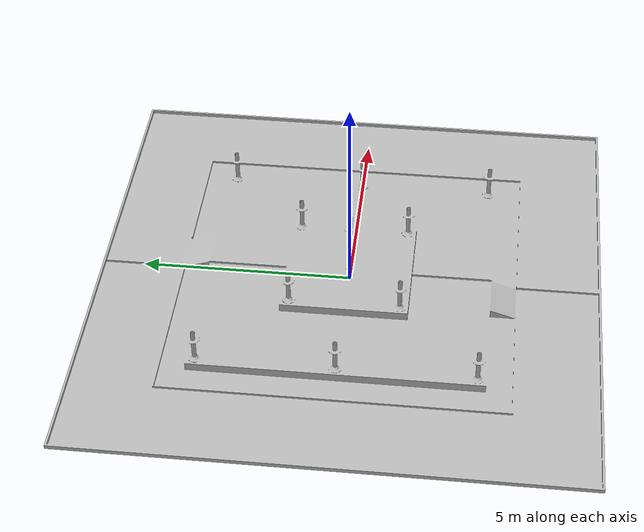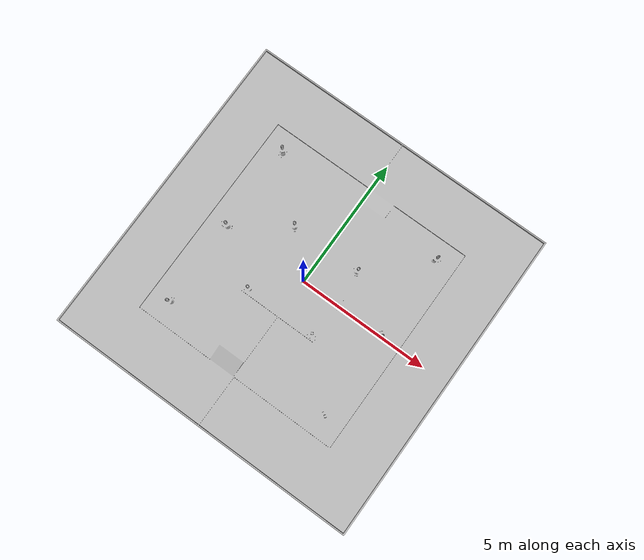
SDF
<?xml version='1.0'?>
<sdf version='1.7'>
  <model name='abu2023_arena'>
    <link name='map'>
      <inertial>
        <mass>10</mass>
        <inertia>
          <ixx>7.2733E-07</ixx>
          <ixy>1.0603E-21</ixy>
          <ixz>-9.5556E-22</ixz>
          <iyy>4.6006E-06</iyy>
          <iyz>2.1645E-07</iyz>
          <izz>4.6006E-06</izz>
        </inertia>
        <pose>-6.8878E-18 -0.0053173 0.0053173 0 -0 0</pose>
      </inertial>

      <pose>0 0 0 0 -0 0</pose>
      <gravity>1</gravity>
      <self_collide>0</self_collide>
      <kinematic>0</kinematic>
      <enable_wind>0</enable_wind>

      <visual name='map_visual'>
        <pose>0 0 -0.0 0 0 0</pose>
        <geometry>
          <mesh>
            <uri>model://abu2023_arena/dae_files/abu2023_arena.dae</uri>
            <scale>1 1 1</scale>
          </mesh>
        </geometry>

        <material>
          <lighting>1</lighting>
          <script>
            <uri>model://abu2023_arena/material/scripts</uri>
            <uri>model://abu2023_arena/material/textures</uri>
            <name>abu2023_arena</name>
          </script>

        </material>

        <transparency>0</transparency>
        <cast_shadows>1</cast_shadows>
      </visual>

      <collision name='map_collision'>
        <laser_retro>0</laser_retro>
        <max_contacts>10</max_contacts>
        <pose>0 0 -0.0 0 0 0</pose>
        <geometry>
          <mesh>
            <uri>dae_files/abu2023_arena.dae</uri>
            <scale>1 1 1</scale>
          </mesh>
        </geometry>
        <surface>
          <friction>
            <ode>
              <mu>10.0</mu>
              <mu2>5.0</mu2>
              <fdir1>1 0 0</fdir1>
              <slip1>0</slip1>
              <slip2>0</slip2>
              <minDepth>0.0001</minDepth>
            </ode>
            <torsional>
              <coefficient>1</coefficient>
              <patch_radius>0</patch_radius>
              <surface_radius>0</surface_radius>
              <use_patch_radius>1</use_patch_radius>
              <ode>
                <slip>0</slip>
              </ode>
            </torsional>
          </friction>
          <bounce>
            <restitution_coefficient>0</restitution_coefficient>
            <threshold>1e+06</threshold>
          </bounce>
          <contact>
            <collide_without_contact>0</collide_without_contact>
            <collide_without_contact_bitmask>1</collide_without_contact_bitmask>
            <collide_bitmask>1</collide_bitmask>
            <ode>
              <soft_cfm>0</soft_cfm>
              <soft_erp>0.2</soft_erp>
              <kp>1e+13</kp>
              <kd>1</kd>
              <max_vel>0.01</max_vel>
              <min_depth>0</min_depth>
            </ode>
            <bullet>
              <split_impulse>1</split_impulse>
              <split_impulse_penetration_threshold>-0.01</split_impulse_penetration_threshold>
              <soft_cfm>0</soft_cfm>
              <soft_erp>0.2</soft_erp>
              <kp>1e+13</kp>
              <kd>1</kd>
            </bullet>
          </contact>
        </surface>
      </collision>

    </link>

    <static>1</static>
    <allow_auto_disable>1</allow_auto_disable>
  </model>
</sdf>
